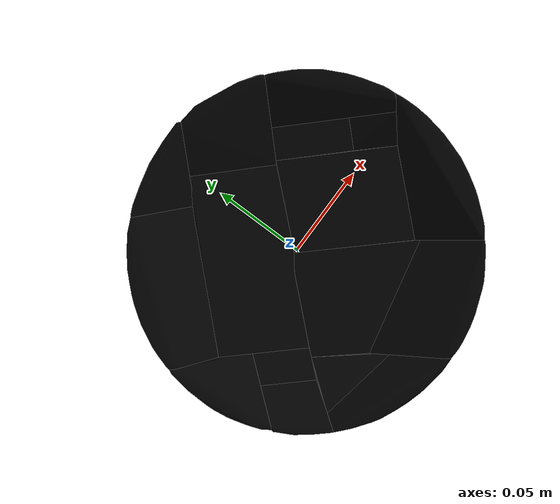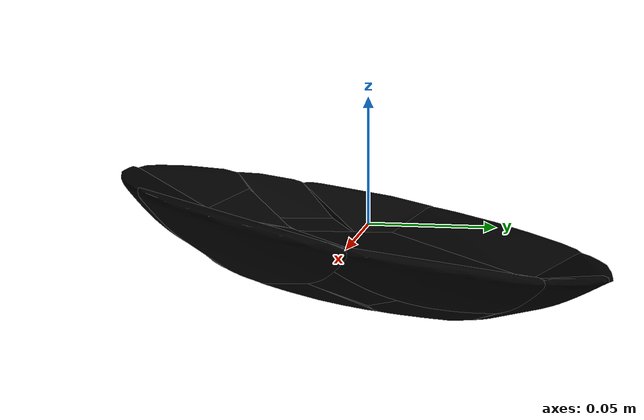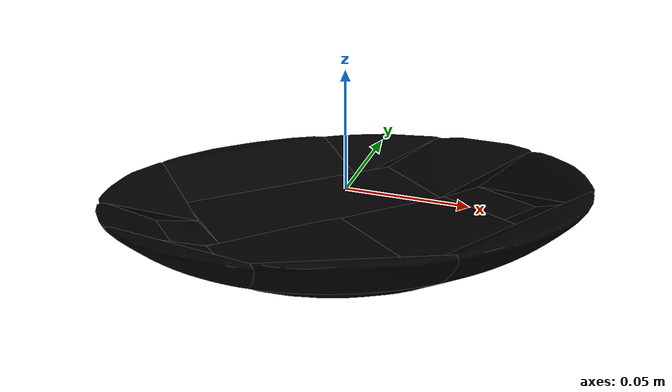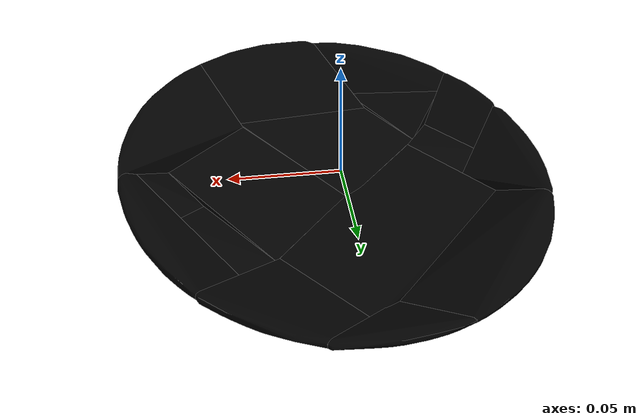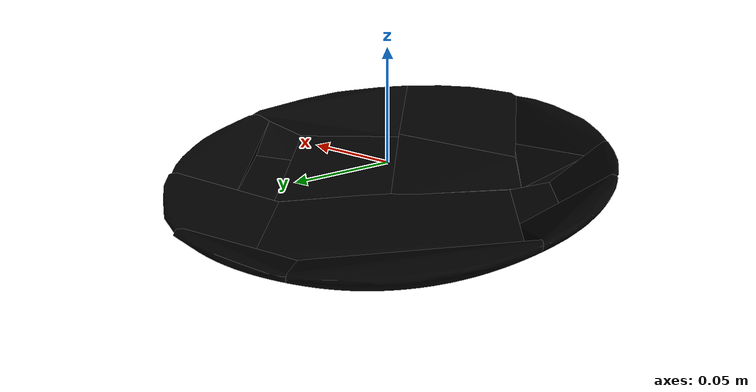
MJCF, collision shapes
<mujoco model="plate_10">
  <asset>
    <mesh file="visual/model_normalized_0.obj" name="model_normalized_0_vis" scale="0.185 0.185 0.185" refquat="0.7397248827654451 0.5594849272637079 -0.29905092401907074 0.2243930899687281" />
    <texture type="2d" name="image0" file="visual/image0.png" />
    <material name="defaultMat.035" texture="image0" specular="0.5" shininess="0.800356625" />
    <mesh file="collision/model_collision_0.obj" name="model_collision_0" scale="0.185 0.185 0.185" refquat="0.7397248827654451 0.5594849272637079 -0.29905092401907074 0.2243930899687281" />
    <mesh file="collision/model_collision_1.obj" name="model_collision_1" scale="0.185 0.185 0.185" refquat="0.7397248827654451 0.5594849272637079 -0.29905092401907074 0.2243930899687281" />
    <mesh file="collision/model_collision_2.obj" name="model_collision_2" scale="0.185 0.185 0.185" refquat="0.7397248827654451 0.5594849272637079 -0.29905092401907074 0.2243930899687281" />
    <mesh file="collision/model_collision_3.obj" name="model_collision_3" scale="0.185 0.185 0.185" refquat="0.7397248827654451 0.5594849272637079 -0.29905092401907074 0.2243930899687281" />
    <mesh file="collision/model_collision_4.obj" name="model_collision_4" scale="0.185 0.185 0.185" refquat="0.7397248827654451 0.5594849272637079 -0.29905092401907074 0.2243930899687281" />
    <mesh file="collision/model_collision_5.obj" name="model_collision_5" scale="0.185 0.185 0.185" refquat="0.7397248827654451 0.5594849272637079 -0.29905092401907074 0.2243930899687281" />
    <mesh file="collision/model_collision_6.obj" name="model_collision_6" scale="0.185 0.185 0.185" refquat="0.7397248827654451 0.5594849272637079 -0.29905092401907074 0.2243930899687281" />
    <mesh file="collision/model_collision_7.obj" name="model_collision_7" scale="0.185 0.185 0.185" refquat="0.7397248827654451 0.5594849272637079 -0.29905092401907074 0.2243930899687281" />
    <mesh file="collision/model_collision_8.obj" name="model_collision_8" scale="0.185 0.185 0.185" refquat="0.7397248827654451 0.5594849272637079 -0.29905092401907074 0.2243930899687281" />
    <mesh file="collision/model_collision_9.obj" name="model_collision_9" scale="0.185 0.185 0.185" refquat="0.7397248827654451 0.5594849272637079 -0.29905092401907074 0.2243930899687281" />
    <mesh file="collision/model_collision_10.obj" name="model_collision_10" scale="0.185 0.185 0.185" refquat="0.7397248827654451 0.5594849272637079 -0.29905092401907074 0.2243930899687281" />
    <mesh file="collision/model_collision_11.obj" name="model_collision_11" scale="0.185 0.185 0.185" refquat="0.7397248827654451 0.5594849272637079 -0.29905092401907074 0.2243930899687281" />
    <mesh file="collision/model_collision_12.obj" name="model_collision_12" scale="0.185 0.185 0.185" refquat="0.7397248827654451 0.5594849272637079 -0.29905092401907074 0.2243930899687281" />
    <mesh file="collision/model_collision_13.obj" name="model_collision_13" scale="0.185 0.185 0.185" refquat="0.7397248827654451 0.5594849272637079 -0.29905092401907074 0.2243930899687281" />
    <mesh file="collision/model_collision_14.obj" name="model_collision_14" scale="0.185 0.185 0.185" refquat="0.7397248827654451 0.5594849272637079 -0.29905092401907074 0.2243930899687281" />
    <mesh file="collision/model_collision_15.obj" name="model_collision_15" scale="0.185 0.185 0.185" refquat="0.7397248827654451 0.5594849272637079 -0.29905092401907074 0.2243930899687281" />
  </asset>
  <default>
    <default class="region">
      <geom group="1" conaffinity="0" contype="0" rgba="0 1 0 0" />
    </default>
  </default>
  <worldbody>
    <body>
      <body name="object">
        <geom density="0" type="mesh" mesh="model_normalized_0_vis" conaffinity="0" contype="0" group="2" material="defaultMat.035" mass="0.18" />
        <geom class="region" name="reg_bbox" type="box" pos="-0.00015597795692112308 -7.656947075153048e-05 -0.005287543601466518" size="0.09504878174901156 0.09418715387715267 0.02792947533870042" />
        <geom density="0" friction="1.2 0.1 0.001" type="mesh" group="3" rgba="0 0 0 0" mesh="model_collision_0"  condim="4"/>        <geom density="0" friction="1.2 0.1 0.001" type="mesh" group="3" rgba="0 0 0 0" mesh="model_collision_1"  condim="4"/>        <geom density="0" friction="1.2 0.1 0.001" type="mesh" group="3" rgba="0 0 0 0" mesh="model_collision_2"  condim="4"/>        <geom density="0" friction="1.2 0.1 0.001" type="mesh" group="3" rgba="0 0 0 0" mesh="model_collision_3"  condim="4"/>        <geom density="0" friction="1.2 0.1 0.001" type="mesh" group="3" rgba="0 0 0 0" mesh="model_collision_4"  condim="4"/>        <geom density="0" friction="1.2 0.1 0.001" type="mesh" group="3" rgba="0 0 0 0" mesh="model_collision_5"  condim="4"/>        <geom density="0" friction="1.2 0.1 0.001" type="mesh" group="3" rgba="0 0 0 0" mesh="model_collision_6"  condim="4"/>        <geom density="0" friction="1.2 0.1 0.001" type="mesh" group="3" rgba="0 0 0 0" mesh="model_collision_7"  condim="4"/>        <geom density="0" friction="1.2 0.1 0.001" type="mesh" group="3" rgba="0 0 0 0" mesh="model_collision_8"  condim="4"/>        <geom density="0" friction="1.2 0.1 0.001" type="mesh" group="3" rgba="0 0 0 0" mesh="model_collision_9"  condim="4"/>        <geom density="0" friction="1.2 0.1 0.001" type="mesh" group="3" rgba="0 0 0 0" mesh="model_collision_10"  condim="4"/>        <geom density="0" friction="1.2 0.1 0.001" type="mesh" group="3" rgba="0 0 0 0" mesh="model_collision_11"  condim="4"/>        <geom density="0" friction="1.2 0.1 0.001" type="mesh" group="3" rgba="0 0 0 0" mesh="model_collision_12"  condim="4"/>        <geom density="0" friction="1.2 0.1 0.001" type="mesh" group="3" rgba="0 0 0 0" mesh="model_collision_13"  condim="4"/>        <geom density="0" friction="1.2 0.1 0.001" type="mesh" group="3" rgba="0 0 0 0" mesh="model_collision_14"  condim="4"/>        <geom density="0" friction="1.2 0.1 0.001" type="mesh" group="3" rgba="0 0 0 0" mesh="model_collision_15"  condim="4"/>      </body>
    </body>
  </worldbody>
</mujoco>
